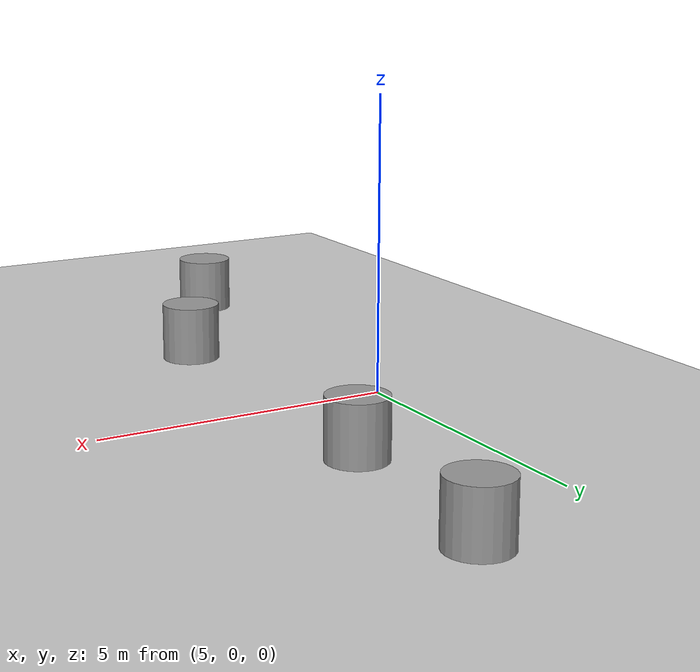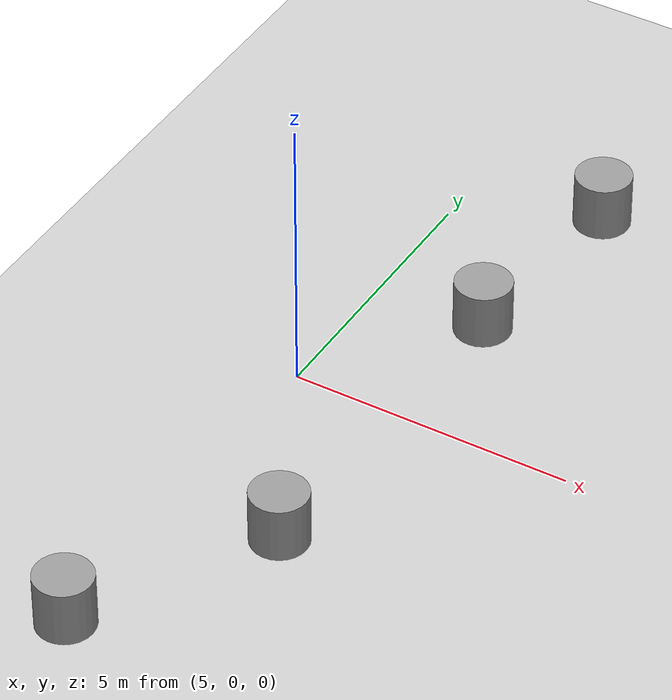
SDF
<sdf version="1.6">
 <world name="default">
  <model name="ground_plane">
   <static>1</static>
   <link name="link">
    <collision name="collision">
     <geometry><plane><normal>0 0 1</normal><size>100 100</size></plane></geometry>
     <surface>
      <contact><collide_bitmask>65535</collide_bitmask></contact>
      <friction><ode><mu>100</mu><mu2>50</mu2></ode></friction>
     </surface>
    </collision>
    <visual name="visual">
     <cast_shadows>0</cast_shadows>
     <geometry><plane><normal>0 0 1</normal><size>100 100</size></plane></geometry>
     <material>
      <script><uri>file://media/materials/scripts/gazebo.material</uri><name>Gazebo/Grey</name></script>
     </material>
    </visual>
   </link>
  </model>
  <model name="unit_cylinder_11">
   <link name="link">
    <inertial>
     <mass>100</mass>
     <inertia><ixx>14.5833</ixx><ixy>0</ixy><ixz>0</ixz><iyy>14.5833</iyy><iyz>0</iyz><izz>12.5</izz></inertia>
    </inertial>
    <visual name="visual">
     <geometry><cylinder><radius>0.5</radius><length>1</length></cylinder></geometry>
     <material>
      <script><name>Gazebo/Grey</name><uri>file://media/materials/scripts/gazebo.material</uri></script>
      <shader type="vertex"><normal_map>__default__</normal_map></shader>
     </material>
    </visual>
    <collision name="collision">
     <geometry><cylinder><radius>0.5</radius><length>1</length></cylinder></geometry>
     <surface>
      <friction>
       <ode><mu>1</mu><mu2>1</mu2><fdir1>0 0 0</fdir1><slip1>0</slip1><slip2>0</slip2></ode>
       <torsional>
        <coefficient>1</coefficient>
        <patch_radius>0</patch_radius>
        <surface_radius>0</surface_radius>
        <use_patch_radius>1</use_patch_radius>
        <ode><slip>0</slip></ode>
       </torsional>
      </friction>
      <bounce><restitution_coefficient>0</restitution_coefficient><threshold>1e+06</threshold></bounce>
      <contact>
       <collide_without_contact>0</collide_without_contact>
       <collide_without_contact_bitmask>1</collide_without_contact_bitmask>
       <collide_bitmask>1</collide_bitmask>
       <ode>
        <soft_cfm>0</soft_cfm>
        <soft_erp>0.2</soft_erp>
        <kp>1e+13</kp>
        <kd>1</kd>
        <max_vel>0.01</max_vel>
        <min_depth>0</min_depth>
       </ode>
       <bullet>
        <split_impulse>1</split_impulse>
        <split_impulse_penetration_threshold>-0.01</split_impulse_penetration_threshold>
        <soft_cfm>0</soft_cfm>
        <soft_erp>0.2</soft_erp>
        <kp>1e+13</kp>
        <kd>1</kd>
       </bullet>
      </contact>
     </surface>
    </collision>
   </link>
   <static>0</static>
   <pose>6.79551 -3.49392 0.5 0 -0 0</pose>
  </model>
  <model name="unit_cylinder_11_clone_0">
   <link name="link">
    <inertial>
     <mass>100</mass>
     <inertia><ixx>14.5833</ixx><ixy>0</ixy><ixz>0</ixz><iyy>14.5833</iyy><iyz>0</iyz><izz>12.5</izz></inertia>
    </inertial>
    <visual name="visual">
     <geometry><cylinder><radius>0.5</radius><length>1</length></cylinder></geometry>
     <material>
      <script><name>Gazebo/Grey</name><uri>file://media/materials/scripts/gazebo.material</uri></script>
      <shader type="vertex"><normal_map>__default__</normal_map></shader>
     </material>
    </visual>
    <collision name="collision">
     <geometry><cylinder><radius>0.5</radius><length>1</length></cylinder></geometry>
     <surface>
      <friction>
       <ode><mu>1</mu><mu2>1</mu2><fdir1>0 0 0</fdir1><slip1>0</slip1><slip2>0</slip2></ode>
       <torsional>
        <coefficient>1</coefficient>
        <patch_radius>0</patch_radius>
        <surface_radius>0</surface_radius>
        <use_patch_radius>1</use_patch_radius>
        <ode><slip>0</slip></ode>
       </torsional>
      </friction>
      <bounce><restitution_coefficient>0</restitution_coefficient><threshold>1e+06</threshold></bounce>
      <contact>
       <collide_without_contact>0</collide_without_contact>
       <collide_without_contact_bitmask>1</collide_without_contact_bitmask>
       <collide_bitmask>1</collide_bitmask>
       <ode>
        <soft_cfm>0</soft_cfm>
        <soft_erp>0.2</soft_erp>
        <kp>1e+13</kp>
        <kd>1</kd>
        <max_vel>0.01</max_vel>
        <min_depth>0</min_depth>
       </ode>
       <bullet>
        <split_impulse>1</split_impulse>
        <split_impulse_penetration_threshold>-0.01</split_impulse_penetration_threshold>
        <soft_cfm>0</soft_cfm>
        <soft_erp>0.2</soft_erp>
        <kp>1e+13</kp>
        <kd>1</kd>
       </bullet>
      </contact>
     </surface>
    </collision>
   </link>
   <static>0</static>
   <pose>4.95526 -6.78188 0.5 0 -0 0</pose>
  </model>
  <model name="unit_cylinder_11_clone_8">
   <link name="link">
    <inertial>
     <mass>100</mass>
     <inertia><ixx>14.5833</ixx><ixy>0</ixy><ixz>0</ixz><iyy>14.5833</iyy><iyz>0</iyz><izz>12.5</izz></inertia>
    </inertial>
    <visual name="visual">
     <geometry><cylinder><radius>0.5</radius><length>1</length></cylinder></geometry>
     <material>
      <script><name>Gazebo/Grey</name><uri>file://media/materials/scripts/gazebo.material</uri></script>
      <shader type="vertex"><normal_map>__default__</normal_map></shader>
     </material>
    </visual>
    <collision name="collision">
     <geometry><cylinder><radius>0.5</radius><length>1</length></cylinder></geometry>
     <surface>
      <friction>
       <ode><mu>1</mu><mu2>1</mu2><fdir1>0 0 0</fdir1><slip1>0</slip1><slip2>0</slip2></ode>
       <torsional>
        <coefficient>1</coefficient>
        <patch_radius>0</patch_radius>
        <surface_radius>0</surface_radius>
        <use_patch_radius>1</use_patch_radius>
        <ode><slip>0</slip></ode>
       </torsional>
      </friction>
      <bounce><restitution_coefficient>0</restitution_coefficient><threshold>1e+06</threshold></bounce>
      <contact>
       <collide_without_contact>0</collide_without_contact>
       <collide_without_contact_bitmask>1</collide_without_contact_bitmask>
       <collide_bitmask>1</collide_bitmask>
       <ode>
        <soft_cfm>0</soft_cfm>
        <soft_erp>0.2</soft_erp>
        <kp>1e+13</kp>
        <kd>1</kd>
        <max_vel>0.01</max_vel>
        <min_depth>0</min_depth>
       </ode>
       <bullet>
        <split_impulse>1</split_impulse>
        <split_impulse_penetration_threshold>-0.01</split_impulse_penetration_threshold>
        <soft_cfm>0</soft_cfm>
        <soft_erp>0.2</soft_erp>
        <kp>1e+13</kp>
        <kd>1</kd>
       </bullet>
      </contact>
     </surface>
    </collision>
   </link>
   <static>0</static>
   <pose>6.99797 2.65 0.5 0 -0 0</pose>
  </model>
  <model name="unit_cylinder_11_clone_9">
   <link name="link">
    <inertial>
     <mass>100</mass>
     <inertia><ixx>14.5833</ixx><ixy>0</ixy><ixz>0</ixz><iyy>14.5833</iyy><iyz>0</iyz><izz>12.5</izz></inertia>
    </inertial>
    <visual name="visual">
     <geometry><cylinder><radius>0.5</radius><length>1</length></cylinder></geometry>
     <material>
      <script><name>Gazebo/Grey</name><uri>file://media/materials/scripts/gazebo.material</uri></script>
      <shader type="vertex"><normal_map>__default__</normal_map></shader>
     </material>
    </visual>
    <collision name="collision">
     <geometry><cylinder><radius>0.5</radius><length>1</length></cylinder></geometry>
     <surface>
      <friction>
       <ode><mu>1</mu><mu2>1</mu2><fdir1>0 0 0</fdir1><slip1>0</slip1><slip2>0</slip2></ode>
       <torsional>
        <coefficient>1</coefficient>
        <patch_radius>0</patch_radius>
        <surface_radius>0</surface_radius>
        <use_patch_radius>1</use_patch_radius>
        <ode><slip>0</slip></ode>
       </torsional>
      </friction>
      <bounce><restitution_coefficient>0</restitution_coefficient><threshold>1e+06</threshold></bounce>
      <contact>
       <collide_without_contact>0</collide_without_contact>
       <collide_without_contact_bitmask>1</collide_without_contact_bitmask>
       <collide_bitmask>1</collide_bitmask>
       <ode>
        <soft_cfm>0</soft_cfm>
        <soft_erp>0.2</soft_erp>
        <kp>1e+13</kp>
        <kd>1</kd>
        <max_vel>0.01</max_vel>
        <min_depth>0</min_depth>
       </ode>
       <bullet>
        <split_impulse>1</split_impulse>
        <split_impulse_penetration_threshold>-0.01</split_impulse_penetration_threshold>
        <soft_cfm>0</soft_cfm>
        <soft_erp>0.2</soft_erp>
        <kp>1e+13</kp>
        <kd>1</kd>
       </bullet>
      </contact>
     </surface>
    </collision>
   </link>
   <static>0</static>
   <pose>7.35163 6.19382 0.5 0 -0 0</pose>
  </model>
 </world>
</sdf>
